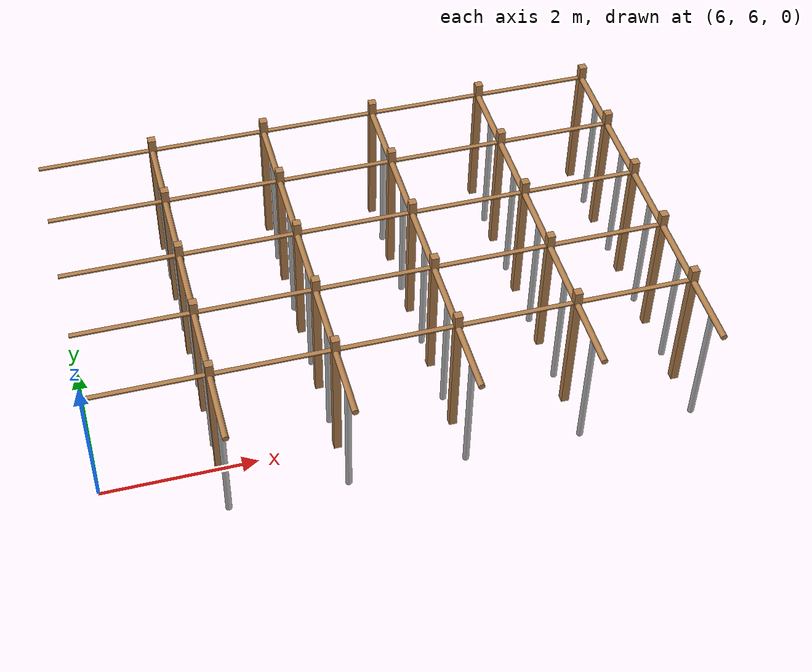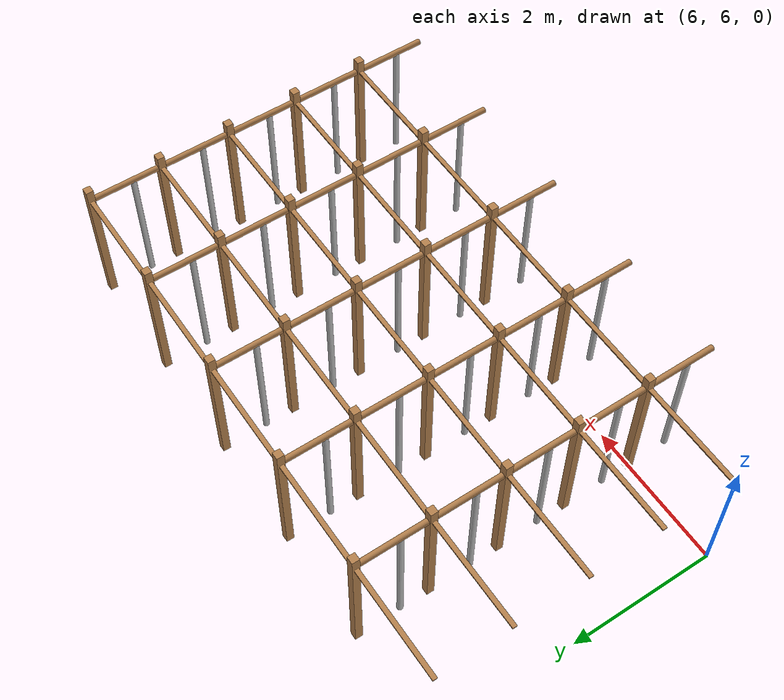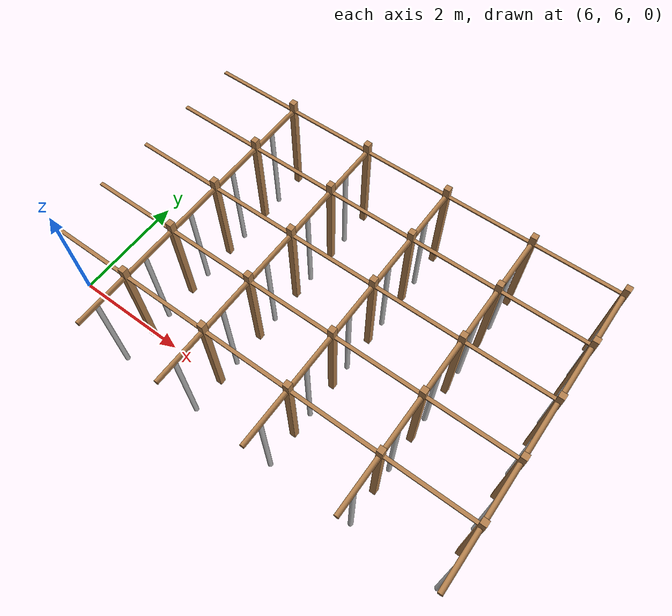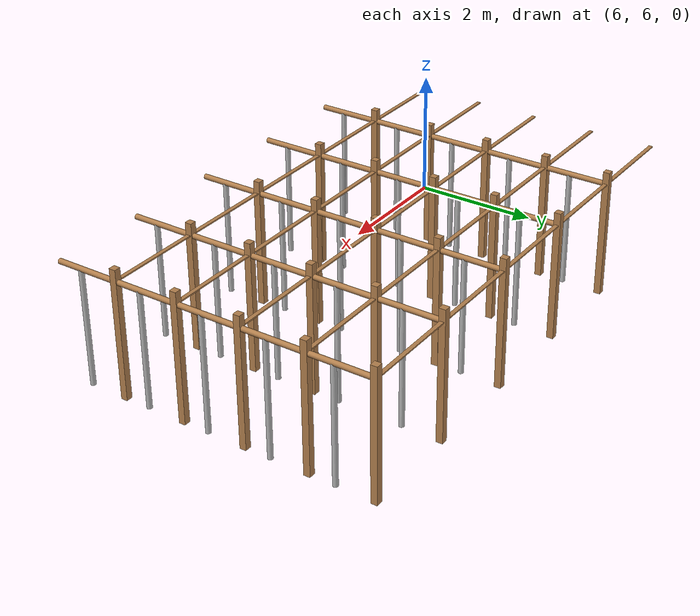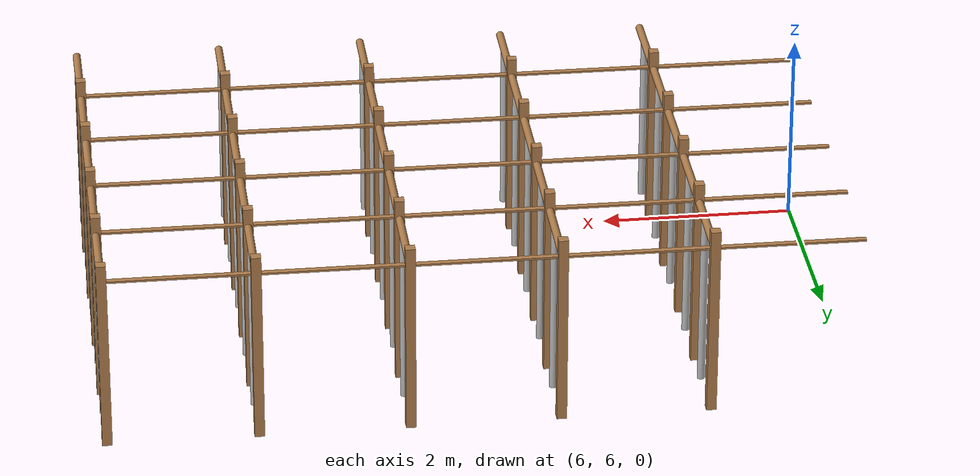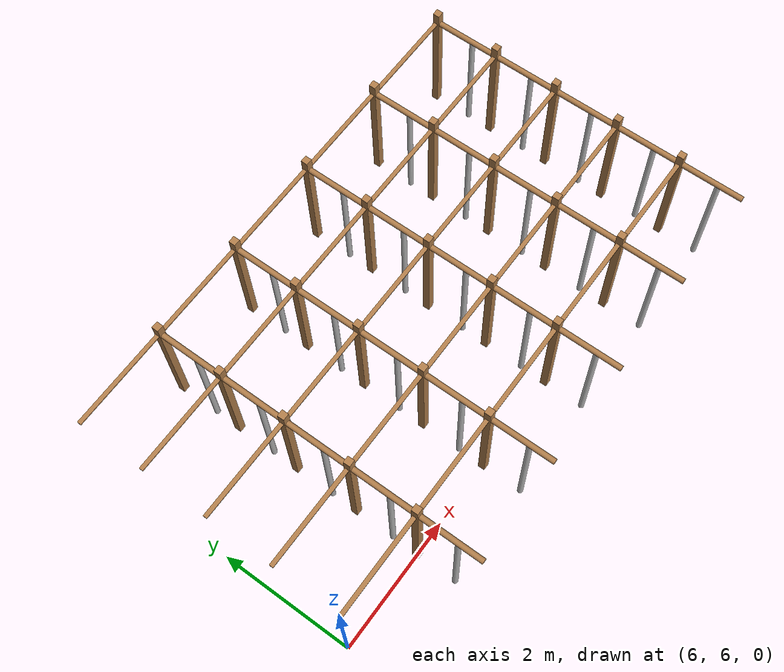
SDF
<sdf version="1.4">
 <model name="pergola">
  <include><name>post_61</name><pose>7.5 6.0 0 0 0 0</pose><uri>model://post</uri></include>
  <include><name>post_62</name><pose>7.5 7.0 0 0 0 0</pose><uri>model://post</uri></include>
  <include><name>post_63</name><pose>7.5 8.0 0 0 0 0</pose><uri>model://post</uri></include>
  <include><name>post_64</name><pose>7.5 9.0 0 0 0 0</pose><uri>model://post</uri></include>
  <include><name>post_65</name><pose>7.5 10.0 0 0 0 0</pose><uri>model://post</uri></include>
  <include><name>post_72</name><pose>9.0 6.0 0 0 0 0</pose><uri>model://post</uri></include>
  <include><name>post_73</name><pose>9.0 7.0 0 0 0 0</pose><uri>model://post</uri></include>
  <include><name>post_74</name><pose>9.0 8.0 0 0 0 0</pose><uri>model://post</uri></include>
  <include><name>post_75</name><pose>9.0 9.0 0 0 0 0</pose><uri>model://post</uri></include>
  <include><name>post_76</name><pose>9.0 10.0 0 0 0 0</pose><uri>model://post</uri></include>
  <include><name>post_83</name><pose>10.5 6.0 0 0 0 0</pose><uri>model://post</uri></include>
  <include><name>post_84</name><pose>10.5 7.0 0 0 0 0</pose><uri>model://post</uri></include>
  <include><name>post_85</name><pose>10.5 8.0 0 0 0 0</pose><uri>model://post</uri></include>
  <include><name>post_86</name><pose>10.5 9.0 0 0 0 0</pose><uri>model://post</uri></include>
  <include><name>post_87</name><pose>10.5 10.0 0 0 0 0</pose><uri>model://post</uri></include>
  <include><name>post_94</name><pose>12.0 6.0 0 0 0 0</pose><uri>model://post</uri></include>
  <include><name>post_95</name><pose>12.0 7.0 0 0 0 0</pose><uri>model://post</uri></include>
  <include><name>post_96</name><pose>12.0 8.0 0 0 0 0</pose><uri>model://post</uri></include>
  <include><name>post_97</name><pose>12.0 9.0 0 0 0 0</pose><uri>model://post</uri></include>
  <include><name>post_98</name><pose>12.0 10.0 0 0 0 0</pose><uri>model://post</uri></include>
  <include><name>post_105</name><pose>13.5 6.0 0 0 0 0</pose><uri>model://post</uri></include>
  <include><name>post_106</name><pose>13.5 7.0 0 0 0 0</pose><uri>model://post</uri></include>
  <include><name>post_107</name><pose>13.5 8.0 0 0 0 0</pose><uri>model://post</uri></include>
  <include><name>post_108</name><pose>13.5 9.0 0 0 0 0</pose><uri>model://post</uri></include>
  <include><name>post_109</name><pose>13.5 10.0 0 0 0 0</pose><uri>model://post</uri></include>
  <link name="beam_50">
   <pose>6.75 6.0 1.81 0 0 0</pose>
   <collision name="collision"><geometry><box><size>1.5 0.06 0.02</size></box></geometry></collision>
   <visual name="visual">
    <geometry><box><size>1.5 0.06 0.02</size></box></geometry>
    <material><script><name>Gazebo/Wood</name></script></material>
   </visual>
   <inertial>
    <mass>5</mass>
    <inertia>
     <ixx>0.0016666666666666668</ixx>
     <ixy>0.0</ixy>
     <ixz>0.0</ixz>
     <iyy>0.9390000000000001</iyy>
     <iyz>0.0</iyz>
     <izz>0.9376666666666665</izz>
    </inertia>
   </inertial>
  </link>
  <link name="beam_51">
   <pose>6.75 7.0 1.81 0 0 0</pose>
   <collision name="collision"><geometry><box><size>1.5 0.06 0.02</size></box></geometry></collision>
   <visual name="visual">
    <geometry><box><size>1.5 0.06 0.02</size></box></geometry>
    <material><script><name>Gazebo/Wood</name></script></material>
   </visual>
   <inertial>
    <mass>5</mass>
    <inertia>
     <ixx>0.0016666666666666668</ixx>
     <ixy>0.0</ixy>
     <ixz>0.0</ixz>
     <iyy>0.9390000000000001</iyy>
     <iyz>0.0</iyz>
     <izz>0.9376666666666665</izz>
    </inertia>
   </inertial>
  </link>
  <link name="beam_52">
   <pose>6.75 8.0 1.81 0 0 0</pose>
   <collision name="collision"><geometry><box><size>1.5 0.06 0.02</size></box></geometry></collision>
   <visual name="visual">
    <geometry><box><size>1.5 0.06 0.02</size></box></geometry>
    <material><script><name>Gazebo/Wood</name></script></material>
   </visual>
   <inertial>
    <mass>5</mass>
    <inertia>
     <ixx>0.0016666666666666668</ixx>
     <ixy>0.0</ixy>
     <ixz>0.0</ixz>
     <iyy>0.9390000000000001</iyy>
     <iyz>0.0</iyz>
     <izz>0.9376666666666665</izz>
    </inertia>
   </inertial>
  </link>
  <link name="beam_53">
   <pose>6.75 9.0 1.81 0 0 0</pose>
   <collision name="collision"><geometry><box><size>1.5 0.06 0.02</size></box></geometry></collision>
   <visual name="visual">
    <geometry><box><size>1.5 0.06 0.02</size></box></geometry>
    <material><script><name>Gazebo/Wood</name></script></material>
   </visual>
   <inertial>
    <mass>5</mass>
    <inertia>
     <ixx>0.0016666666666666668</ixx>
     <ixy>0.0</ixy>
     <ixz>0.0</ixz>
     <iyy>0.9390000000000001</iyy>
     <iyz>0.0</iyz>
     <izz>0.9376666666666665</izz>
    </inertia>
   </inertial>
  </link>
  <link name="beam_54">
   <pose>6.75 10.0 1.81 0 0 0</pose>
   <collision name="collision"><geometry><box><size>1.5 0.06 0.02</size></box></geometry></collision>
   <visual name="visual">
    <geometry><box><size>1.5 0.06 0.02</size></box></geometry>
    <material><script><name>Gazebo/Wood</name></script></material>
   </visual>
   <inertial>
    <mass>5</mass>
    <inertia>
     <ixx>0.0016666666666666668</ixx>
     <ixy>0.0</ixy>
     <ixz>0.0</ixz>
     <iyy>0.9390000000000001</iyy>
     <iyz>0.0</iyz>
     <izz>0.9376666666666665</izz>
    </inertia>
   </inertial>
  </link>
  <link name="beam_61">
   <pose>8.25 6.0 1.81 0 0 0</pose>
   <collision name="collision"><geometry><box><size>1.5 0.06 0.02</size></box></geometry></collision>
   <visual name="visual">
    <geometry><box><size>1.5 0.06 0.02</size></box></geometry>
    <material><script><name>Gazebo/Wood</name></script></material>
   </visual>
   <inertial>
    <mass>5</mass>
    <inertia>
     <ixx>0.0016666666666666668</ixx>
     <ixy>0.0</ixy>
     <ixz>0.0</ixz>
     <iyy>0.9390000000000001</iyy>
     <iyz>0.0</iyz>
     <izz>0.9376666666666665</izz>
    </inertia>
   </inertial>
  </link>
  <link name="beam_62">
   <pose>8.25 7.0 1.81 0 0 0</pose>
   <collision name="collision"><geometry><box><size>1.5 0.06 0.02</size></box></geometry></collision>
   <visual name="visual">
    <geometry><box><size>1.5 0.06 0.02</size></box></geometry>
    <material><script><name>Gazebo/Wood</name></script></material>
   </visual>
   <inertial>
    <mass>5</mass>
    <inertia>
     <ixx>0.0016666666666666668</ixx>
     <ixy>0.0</ixy>
     <ixz>0.0</ixz>
     <iyy>0.9390000000000001</iyy>
     <iyz>0.0</iyz>
     <izz>0.9376666666666665</izz>
    </inertia>
   </inertial>
  </link>
  <link name="beam_63">
   <pose>8.25 8.0 1.81 0 0 0</pose>
   <collision name="collision"><geometry><box><size>1.5 0.06 0.02</size></box></geometry></collision>
   <visual name="visual">
    <geometry><box><size>1.5 0.06 0.02</size></box></geometry>
    <material><script><name>Gazebo/Wood</name></script></material>
   </visual>
   <inertial>
    <mass>5</mass>
    <inertia>
     <ixx>0.0016666666666666668</ixx>
     <ixy>0.0</ixy>
     <ixz>0.0</ixz>
     <iyy>0.9390000000000001</iyy>
     <iyz>0.0</iyz>
     <izz>0.9376666666666665</izz>
    </inertia>
   </inertial>
  </link>
  <link name="beam_64">
   <pose>8.25 9.0 1.81 0 0 0</pose>
   <collision name="collision"><geometry><box><size>1.5 0.06 0.02</size></box></geometry></collision>
   <visual name="visual">
    <geometry><box><size>1.5 0.06 0.02</size></box></geometry>
    <material><script><name>Gazebo/Wood</name></script></material>
   </visual>
   <inertial>
    <mass>5</mass>
    <inertia>
     <ixx>0.0016666666666666668</ixx>
     <ixy>0.0</ixy>
     <ixz>0.0</ixz>
     <iyy>0.9390000000000001</iyy>
     <iyz>0.0</iyz>
     <izz>0.9376666666666665</izz>
    </inertia>
   </inertial>
  </link>
  <link name="beam_65">
   <pose>8.25 10.0 1.81 0 0 0</pose>
   <collision name="collision"><geometry><box><size>1.5 0.06 0.02</size></box></geometry></collision>
   <visual name="visual">
    <geometry><box><size>1.5 0.06 0.02</size></box></geometry>
    <material><script><name>Gazebo/Wood</name></script></material>
   </visual>
   <inertial>
    <mass>5</mass>
    <inertia>
     <ixx>0.0016666666666666668</ixx>
     <ixy>0.0</ixy>
     <ixz>0.0</ixz>
     <iyy>0.9390000000000001</iyy>
     <iyz>0.0</iyz>
     <izz>0.9376666666666665</izz>
    </inertia>
   </inertial>
  </link>
  <link name="beam_72">
   <pose>9.75 6.0 1.81 0 0 0</pose>
   <collision name="collision"><geometry><box><size>1.5 0.06 0.02</size></box></geometry></collision>
   <visual name="visual">
    <geometry><box><size>1.5 0.06 0.02</size></box></geometry>
    <material><script><name>Gazebo/Wood</name></script></material>
   </visual>
   <inertial>
    <mass>5</mass>
    <inertia>
     <ixx>0.0016666666666666668</ixx>
     <ixy>0.0</ixy>
     <ixz>0.0</ixz>
     <iyy>0.9390000000000001</iyy>
     <iyz>0.0</iyz>
     <izz>0.9376666666666665</izz>
    </inertia>
   </inertial>
  </link>
  <link name="beam_73">
   <pose>9.75 7.0 1.81 0 0 0</pose>
   <collision name="collision"><geometry><box><size>1.5 0.06 0.02</size></box></geometry></collision>
   <visual name="visual">
    <geometry><box><size>1.5 0.06 0.02</size></box></geometry>
    <material><script><name>Gazebo/Wood</name></script></material>
   </visual>
   <inertial>
    <mass>5</mass>
    <inertia>
     <ixx>0.0016666666666666668</ixx>
     <ixy>0.0</ixy>
     <ixz>0.0</ixz>
     <iyy>0.9390000000000001</iyy>
     <iyz>0.0</iyz>
     <izz>0.9376666666666665</izz>
    </inertia>
   </inertial>
  </link>
  <link name="beam_74">
   <pose>9.75 8.0 1.81 0 0 0</pose>
   <collision name="collision"><geometry><box><size>1.5 0.06 0.02</size></box></geometry></collision>
   <visual name="visual">
    <geometry><box><size>1.5 0.06 0.02</size></box></geometry>
    <material><script><name>Gazebo/Wood</name></script></material>
   </visual>
   <inertial>
    <mass>5</mass>
    <inertia>
     <ixx>0.0016666666666666668</ixx>
     <ixy>0.0</ixy>
     <ixz>0.0</ixz>
     <iyy>0.9390000000000001</iyy>
     <iyz>0.0</iyz>
     <izz>0.9376666666666665</izz>
    </inertia>
   </inertial>
  </link>
  <link name="beam_75">
   <pose>9.75 9.0 1.81 0 0 0</pose>
   <collision name="collision"><geometry><box><size>1.5 0.06 0.02</size></box></geometry></collision>
   <visual name="visual">
    <geometry><box><size>1.5 0.06 0.02</size></box></geometry>
    <material><script><name>Gazebo/Wood</name></script></material>
   </visual>
   <inertial>
    <mass>5</mass>
    <inertia>
     <ixx>0.0016666666666666668</ixx>
     <ixy>0.0</ixy>
     <ixz>0.0</ixz>
     <iyy>0.9390000000000001</iyy>
     <iyz>0.0</iyz>
     <izz>0.9376666666666665</izz>
    </inertia>
   </inertial>
  </link>
  <link name="beam_76">
   <pose>9.75 10.0 1.81 0 0 0</pose>
   <collision name="collision"><geometry><box><size>1.5 0.06 0.02</size></box></geometry></collision>
   <visual name="visual">
    <geometry><box><size>1.5 0.06 0.02</size></box></geometry>
    <material><script><name>Gazebo/Wood</name></script></material>
   </visual>
   <inertial>
    <mass>5</mass>
    <inertia>
     <ixx>0.0016666666666666668</ixx>
     <ixy>0.0</ixy>
     <ixz>0.0</ixz>
     <iyy>0.9390000000000001</iyy>
     <iyz>0.0</iyz>
     <izz>0.9376666666666665</izz>
    </inertia>
   </inertial>
  </link>
  <link name="beam_83">
   <pose>11.25 6.0 1.81 0 0 0</pose>
   <collision name="collision"><geometry><box><size>1.5 0.06 0.02</size></box></geometry></collision>
   <visual name="visual">
    <geometry><box><size>1.5 0.06 0.02</size></box></geometry>
    <material><script><name>Gazebo/Wood</name></script></material>
   </visual>
   <inertial>
    <mass>5</mass>
    <inertia>
     <ixx>0.0016666666666666668</ixx>
     <ixy>0.0</ixy>
     <ixz>0.0</ixz>
     <iyy>0.9390000000000001</iyy>
     <iyz>0.0</iyz>
     <izz>0.9376666666666665</izz>
    </inertia>
   </inertial>
  </link>
  <link name="beam_84">
   <pose>11.25 7.0 1.81 0 0 0</pose>
   <collision name="collision"><geometry><box><size>1.5 0.06 0.02</size></box></geometry></collision>
   <visual name="visual">
    <geometry><box><size>1.5 0.06 0.02</size></box></geometry>
    <material><script><name>Gazebo/Wood</name></script></material>
   </visual>
   <inertial>
    <mass>5</mass>
    <inertia>
     <ixx>0.0016666666666666668</ixx>
     <ixy>0.0</ixy>
     <ixz>0.0</ixz>
     <iyy>0.9390000000000001</iyy>
     <iyz>0.0</iyz>
     <izz>0.9376666666666665</izz>
    </inertia>
   </inertial>
  </link>
  <link name="beam_85">
   <pose>11.25 8.0 1.81 0 0 0</pose>
   <collision name="collision"><geometry><box><size>1.5 0.06 0.02</size></box></geometry></collision>
   <visual name="visual">
    <geometry><box><size>1.5 0.06 0.02</size></box></geometry>
    <material><script><name>Gazebo/Wood</name></script></material>
   </visual>
   <inertial>
    <mass>5</mass>
    <inertia>
     <ixx>0.0016666666666666668</ixx>
     <ixy>0.0</ixy>
     <ixz>0.0</ixz>
     <iyy>0.9390000000000001</iyy>
     <iyz>0.0</iyz>
     <izz>0.9376666666666665</izz>
    </inertia>
   </inertial>
  </link>
  <link name="beam_86">
   <pose>11.25 9.0 1.81 0 0 0</pose>
   <collision name="collision"><geometry><box><size>1.5 0.06 0.02</size></box></geometry></collision>
   <visual name="visual">
    <geometry><box><size>1.5 0.06 0.02</size></box></geometry>
    <material><script><name>Gazebo/Wood</name></script></material>
   </visual>
   <inertial>
    <mass>5</mass>
    <inertia>
     <ixx>0.0016666666666666668</ixx>
     <ixy>0.0</ixy>
     <ixz>0.0</ixz>
     <iyy>0.9390000000000001</iyy>
     <iyz>0.0</iyz>
     <izz>0.9376666666666665</izz>
    </inertia>
   </inertial>
  </link>
  <link name="beam_87">
   <pose>11.25 10.0 1.81 0 0 0</pose>
   <collision name="collision"><geometry><box><size>1.5 0.06 0.02</size></box></geometry></collision>
   <visual name="visual">
    <geometry><box><size>1.5 0.06 0.02</size></box></geometry>
    <material><script><name>Gazebo/Wood</name></script></material>
   </visual>
   <inertial>
    <mass>5</mass>
    <inertia>
     <ixx>0.0016666666666666668</ixx>
     <ixy>0.0</ixy>
     <ixz>0.0</ixz>
     <iyy>0.9390000000000001</iyy>
     <iyz>0.0</iyz>
     <izz>0.9376666666666665</izz>
    </inertia>
   </inertial>
  </link>
  <link name="beam_94">
   <pose>12.75 6.0 1.81 0 0 0</pose>
   <collision name="collision"><geometry><box><size>1.5 0.06 0.02</size></box></geometry></collision>
   <visual name="visual">
    <geometry><box><size>1.5 0.06 0.02</size></box></geometry>
    <material><script><name>Gazebo/Wood</name></script></material>
   </visual>
   <inertial>
    <mass>5</mass>
    <inertia>
     <ixx>0.0016666666666666668</ixx>
     <ixy>0.0</ixy>
     <ixz>0.0</ixz>
     <iyy>0.9390000000000001</iyy>
     <iyz>0.0</iyz>
     <izz>0.9376666666666665</izz>
    </inertia>
   </inertial>
  </link>
  <link name="beam_95">
   <pose>12.75 7.0 1.81 0 0 0</pose>
   <collision name="collision"><geometry><box><size>1.5 0.06 0.02</size></box></geometry></collision>
   <visual name="visual">
    <geometry><box><size>1.5 0.06 0.02</size></box></geometry>
    <material><script><name>Gazebo/Wood</name></script></material>
   </visual>
   <inertial>
    <mass>5</mass>
    <inertia>
     <ixx>0.0016666666666666668</ixx>
     <ixy>0.0</ixy>
     <ixz>0.0</ixz>
     <iyy>0.9390000000000001</iyy>
     <iyz>0.0</iyz>
     <izz>0.9376666666666665</izz>
    </inertia>
   </inertial>
  </link>
  <link name="beam_96">
   <pose>12.75 8.0 1.81 0 0 0</pose>
   <collision name="collision"><geometry><box><size>1.5 0.06 0.02</size></box></geometry></collision>
   <visual name="visual">
    <geometry><box><size>1.5 0.06 0.02</size></box></geometry>
    <material><script><name>Gazebo/Wood</name></script></material>
   </visual>
   <inertial>
    <mass>5</mass>
    <inertia>
     <ixx>0.0016666666666666668</ixx>
     <ixy>0.0</ixy>
     <ixz>0.0</ixz>
     <iyy>0.9390000000000001</iyy>
     <iyz>0.0</iyz>
     <izz>0.9376666666666665</izz>
    </inertia>
   </inertial>
  </link>
  <link name="beam_97">
   <pose>12.75 9.0 1.81 0 0 0</pose>
   <collision name="collision"><geometry><box><size>1.5 0.06 0.02</size></box></geometry></collision>
   <visual name="visual">
    <geometry><box><size>1.5 0.06 0.02</size></box></geometry>
    <material><script><name>Gazebo/Wood</name></script></material>
   </visual>
   <inertial>
    <mass>5</mass>
    <inertia>
     <ixx>0.0016666666666666668</ixx>
     <ixy>0.0</ixy>
     <ixz>0.0</ixz>
     <iyy>0.9390000000000001</iyy>
     <iyz>0.0</iyz>
     <izz>0.9376666666666665</izz>
    </inertia>
   </inertial>
  </link>
  <link name="beam_98">
   <pose>12.75 10.0 1.81 0 0 0</pose>
   <collision name="collision"><geometry><box><size>1.5 0.06 0.02</size></box></geometry></collision>
   <visual name="visual">
    <geometry><box><size>1.5 0.06 0.02</size></box></geometry>
    <material><script><name>Gazebo/Wood</name></script></material>
   </visual>
   <inertial>
    <mass>5</mass>
    <inertia>
     <ixx>0.0016666666666666668</ixx>
     <ixy>0.0</ixy>
     <ixz>0.0</ixz>
     <iyy>0.9390000000000001</iyy>
     <iyz>0.0</iyz>
     <izz>0.9376666666666665</izz>
    </inertia>
   </inertial>
  </link>
  <include><name>tree_55</name><pose>7.5 5.4 0 0 0 0</pose><uri>model://tree_trunk</uri></include>
  <include><name>tree_56</name><pose>7.5 6.4 0 0 0 0</pose><uri>model://tree_trunk</uri></include>
  <include><name>tree_57</name><pose>7.5 7.4 0 0 0 0</pose><uri>model://tree_trunk</uri></include>
  <include><name>tree_58</name><pose>7.5 8.4 0 0 0 0</pose><uri>model://tree_trunk</uri></include>
  <include><name>tree_59</name><pose>7.5 9.4 0 0 0 0</pose><uri>model://tree_trunk</uri></include>
  <include><name>tree_65</name><pose>9.0 5.4 0 0 0 0</pose><uri>model://tree_trunk</uri></include>
  <include><name>tree_66</name><pose>9.0 6.4 0 0 0 0</pose><uri>model://tree_trunk</uri></include>
  <include><name>tree_67</name><pose>9.0 7.4 0 0 0 0</pose><uri>model://tree_trunk</uri></include>
  <include><name>tree_68</name><pose>9.0 8.4 0 0 0 0</pose><uri>model://tree_trunk</uri></include>
  <include><name>tree_69</name><pose>9.0 9.4 0 0 0 0</pose><uri>model://tree_trunk</uri></include>
  <include><name>tree_75</name><pose>10.5 5.4 0 0 0 0</pose><uri>model://tree_trunk</uri></include>
  <include><name>tree_76</name><pose>10.5 6.4 0 0 0 0</pose><uri>model://tree_trunk</uri></include>
  <include><name>tree_77</name><pose>10.5 7.4 0 0 0 0</pose><uri>model://tree_trunk</uri></include>
  <include><name>tree_78</name><pose>10.5 8.4 0 0 0 0</pose><uri>model://tree_trunk</uri></include>
  <include><name>tree_79</name><pose>10.5 9.4 0 0 0 0</pose><uri>model://tree_trunk</uri></include>
  <include><name>tree_85</name><pose>12.0 5.4 0 0 0 0</pose><uri>model://tree_trunk</uri></include>
  <include><name>tree_86</name><pose>12.0 6.4 0 0 0 0</pose><uri>model://tree_trunk</uri></include>
  <include><name>tree_87</name><pose>12.0 7.4 0 0 0 0</pose><uri>model://tree_trunk</uri></include>
  <include><name>tree_88</name><pose>12.0 8.4 0 0 0 0</pose><uri>model://tree_trunk</uri></include>
  <include><name>tree_89</name><pose>12.0 9.4 0 0 0 0</pose><uri>model://tree_trunk</uri></include>
  <include><name>tree_95</name><pose>13.5 5.4 0 0 0 0</pose><uri>model://tree_trunk</uri></include>
  <include><name>tree_96</name><pose>13.5 6.4 0 0 0 0</pose><uri>model://tree_trunk</uri></include>
  <include><name>tree_97</name><pose>13.5 7.4 0 0 0 0</pose><uri>model://tree_trunk</uri></include>
  <include><name>tree_98</name><pose>13.5 8.4 0 0 0 0</pose><uri>model://tree_trunk</uri></include>
  <include><name>tree_99</name><pose>13.5 9.4 0 0 0 0</pose><uri>model://tree_trunk</uri></include>
  <link name="baseBranch_55">
   <pose>7.5 5.5 1.8 1.5707963267948966 0 0</pose>
   <collision name="collision">
    <geometry><cylinder><radius>0.04</radius><length>0.94</length></cylinder></geometry>
   </collision>
   <visual name="visual">
    <geometry><cylinder><radius>0.04</radius><length>0.94</length></cylinder></geometry>
    <material><script><name>Gazebo/WoodFloor</name></script></material>
   </visual>
   <inertial>
    <mass>10</mass>
    <inertia>
     <ixx>0.7403333333333334</ixx>
     <ixy>0.0</ixy>
     <ixz>0.0</ixz>
     <iyy>0.7403333333333334</iyy>
     <iyz>0.0</iyz>
     <izz>0.008</izz>
    </inertia>
   </inertial>
  </link>
  <link name="baseBranch_56">
   <pose>7.5 6.5 1.8 1.5707963267948966 0 0</pose>
   <collision name="collision">
    <geometry><cylinder><radius>0.04</radius><length>0.94</length></cylinder></geometry>
   </collision>
   <visual name="visual">
    <geometry><cylinder><radius>0.04</radius><length>0.94</length></cylinder></geometry>
    <material><script><name>Gazebo/WoodFloor</name></script></material>
   </visual>
   <inertial>
    <mass>10</mass>
    <inertia>
     <ixx>0.7403333333333334</ixx>
     <ixy>0.0</ixy>
     <ixz>0.0</ixz>
     <iyy>0.7403333333333334</iyy>
     <iyz>0.0</iyz>
     <izz>0.008</izz>
    </inertia>
   </inertial>
  </link>
  <link name="baseBranch_57">
   <pose>7.5 7.5 1.8 1.5707963267948966 0 0</pose>
   <collision name="collision">
    <geometry><cylinder><radius>0.04</radius><length>0.94</length></cylinder></geometry>
   </collision>
   <visual name="visual">
    <geometry><cylinder><radius>0.04</radius><length>0.94</length></cylinder></geometry>
    <material><script><name>Gazebo/WoodFloor</name></script></material>
   </visual>
   <inertial>
    <mass>10</mass>
    <inertia>
     <ixx>0.7403333333333334</ixx>
     <ixy>0.0</ixy>
     <ixz>0.0</ixz>
     <iyy>0.7403333333333334</iyy>
     <iyz>0.0</iyz>
     <izz>0.008</izz>
    </inertia>
   </inertial>
  </link>
  <link name="baseBranch_58">
   <pose>7.5 8.5 1.8 1.5707963267948966 0 0</pose>
   <collision name="collision">
    <geometry><cylinder><radius>0.04</radius><length>0.94</length></cylinder></geometry>
   </collision>
   <visual name="visual">
    <geometry><cylinder><radius>0.04</radius><length>0.94</length></cylinder></geometry>
    <material><script><name>Gazebo/WoodFloor</name></script></material>
   </visual>
   <inertial>
    <mass>10</mass>
    <inertia>
     <ixx>0.7403333333333334</ixx>
     <ixy>0.0</ixy>
     <ixz>0.0</ixz>
     <iyy>0.7403333333333334</iyy>
     <iyz>0.0</iyz>
     <izz>0.008</izz>
    </inertia>
   </inertial>
  </link>
  <link name="baseBranch_59">
   <pose>7.5 9.5 1.8 1.5707963267948966 0 0</pose>
   <collision name="collision">
    <geometry><cylinder><radius>0.04</radius><length>0.94</length></cylinder></geometry>
   </collision>
   <visual name="visual">
    <geometry><cylinder><radius>0.04</radius><length>0.94</length></cylinder></geometry>
    <material><script><name>Gazebo/WoodFloor</name></script></material>
   </visual>
   <inertial>
    <mass>10</mass>
    <inertia>
     <ixx>0.7403333333333334</ixx>
     <ixy>0.0</ixy>
     <ixz>0.0</ixz>
     <iyy>0.7403333333333334</iyy>
     <iyz>0.0</iyz>
     <izz>0.008</izz>
    </inertia>
   </inertial>
  </link>
  <link name="baseBranch_65">
   <pose>9.0 5.5 1.8 1.5707963267948966 0 0</pose>
   <collision name="collision">
    <geometry><cylinder><radius>0.04</radius><length>0.94</length></cylinder></geometry>
   </collision>
   <visual name="visual">
    <geometry><cylinder><radius>0.04</radius><length>0.94</length></cylinder></geometry>
    <material><script><name>Gazebo/WoodFloor</name></script></material>
   </visual>
   <inertial>
    <mass>10</mass>
    <inertia>
     <ixx>0.7403333333333334</ixx>
     <ixy>0.0</ixy>
     <ixz>0.0</ixz>
     <iyy>0.7403333333333334</iyy>
     <iyz>0.0</iyz>
     <izz>0.008</izz>
    </inertia>
   </inertial>
  </link>
  <link name="baseBranch_66">
   <pose>9.0 6.5 1.8 1.5707963267948966 0 0</pose>
   <collision name="collision">
    <geometry><cylinder><radius>0.04</radius><length>0.94</length></cylinder></geometry>
   </collision>
   <visual name="visual">
    <geometry><cylinder><radius>0.04</radius><length>0.94</length></cylinder></geometry>
    <material><script><name>Gazebo/WoodFloor</name></script></material>
   </visual>
   <inertial>
    <mass>10</mass>
    <inertia>
     <ixx>0.7403333333333334</ixx>
     <ixy>0.0</ixy>
     <ixz>0.0</ixz>
     <iyy>0.7403333333333334</iyy>
     <iyz>0.0</iyz>
     <izz>0.008</izz>
    </inertia>
   </inertial>
  </link>
  <link name="baseBranch_67">
   <pose>9.0 7.5 1.8 1.5707963267948966 0 0</pose>
   <collision name="collision">
    <geometry><cylinder><radius>0.04</radius><length>0.94</length></cylinder></geometry>
   </collision>
   <visual name="visual">
    <geometry><cylinder><radius>0.04</radius><length>0.94</length></cylinder></geometry>
    <material><script><name>Gazebo/WoodFloor</name></script></material>
   </visual>
   <inertial>
    <mass>10</mass>
    <inertia>
     <ixx>0.7403333333333334</ixx>
     <ixy>0.0</ixy>
     <ixz>0.0</ixz>
     <iyy>0.7403333333333334</iyy>
     <iyz>0.0</iyz>
     <izz>0.008</izz>
    </inertia>
   </inertial>
  </link>
  <link name="baseBranch_68">
   <pose>9.0 8.5 1.8 1.5707963267948966 0 0</pose>
   <collision name="collision">
    <geometry><cylinder><radius>0.04</radius><length>0.94</length></cylinder></geometry>
   </collision>
   <visual name="visual">
    <geometry><cylinder><radius>0.04</radius><length>0.94</length></cylinder></geometry>
    <material><script><name>Gazebo/WoodFloor</name></script></material>
   </visual>
   <inertial>
    <mass>10</mass>
    <inertia>
     <ixx>0.7403333333333334</ixx>
     <ixy>0.0</ixy>
     <ixz>0.0</ixz>
     <iyy>0.7403333333333334</iyy>
     <iyz>0.0</iyz>
     <izz>0.008</izz>
    </inertia>
   </inertial>
  </link>
  <link name="baseBranch_69">
   <pose>9.0 9.5 1.8 1.5707963267948966 0 0</pose>
   <collision name="collision">
    <geometry><cylinder><radius>0.04</radius><length>0.94</length></cylinder></geometry>
   </collision>
   <visual name="visual">
    <geometry><cylinder><radius>0.04</radius><length>0.94</length></cylinder></geometry>
    <material><script><name>Gazebo/WoodFloor</name></script></material>
   </visual>
   <inertial>
    <mass>10</mass>
    <inertia>
     <ixx>0.7403333333333334</ixx>
     <ixy>0.0</ixy>
     <ixz>0.0</ixz>
     <iyy>0.7403333333333334</iyy>
     <iyz>0.0</iyz>
     <izz>0.008</izz>
    </inertia>
   </inertial>
  </link>
  <link name="baseBranch_75">
   <pose>10.5 5.5 1.8 1.5707963267948966 0 0</pose>
   <collision name="collision">
    <geometry><cylinder><radius>0.04</radius><length>0.94</length></cylinder></geometry>
   </collision>
   <visual name="visual">
    <geometry><cylinder><radius>0.04</radius><length>0.94</length></cylinder></geometry>
    <material><script><name>Gazebo/WoodFloor</name></script></material>
   </visual>
   <inertial>
    <mass>10</mass>
    <inertia>
     <ixx>0.7403333333333334</ixx>
     <ixy>0.0</ixy>
     <ixz>0.0</ixz>
     <iyy>0.7403333333333334</iyy>
     <iyz>0.0</iyz>
     <izz>0.008</izz>
    </inertia>
   </inertial>
  </link>
  <link name="baseBranch_76">
   <pose>10.5 6.5 1.8 1.5707963267948966 0 0</pose>
   <collision name="collision">
    <geometry><cylinder><radius>0.04</radius><length>0.94</length></cylinder></geometry>
   </collision>
   <visual name="visual">
    <geometry><cylinder><radius>0.04</radius><length>0.94</length></cylinder></geometry>
    <material><script><name>Gazebo/WoodFloor</name></script></material>
   </visual>
   <inertial>
    <mass>10</mass>
    <inertia>
     <ixx>0.7403333333333334</ixx>
     <ixy>0.0</ixy>
     <ixz>0.0</ixz>
     <iyy>0.7403333333333334</iyy>
     <iyz>0.0</iyz>
     <izz>0.008</izz>
    </inertia>
   </inertial>
  </link>
  <link name="baseBranch_77">
   <pose>10.5 7.5 1.8 1.5707963267948966 0 0</pose>
   <collision name="collision">
    <geometry><cylinder><radius>0.04</radius><length>0.94</length></cylinder></geometry>
   </collision>
   <visual name="visual">
    <geometry><cylinder><radius>0.04</radius><length>0.94</length></cylinder></geometry>
    <material><script><name>Gazebo/WoodFloor</name></script></material>
   </visual>
   <inertial>
    <mass>10</mass>
    <inertia>
     <ixx>0.7403333333333334</ixx>
     <ixy>0.0</ixy>
     <ixz>0.0</ixz>
     <iyy>0.7403333333333334</iyy>
     <iyz>0.0</iyz>
     <izz>0.008</izz>
    </inertia>
   </inertial>
  </link>
  <link name="baseBranch_78">
   <pose>10.5 8.5 1.8 1.5707963267948966 0 0</pose>
   <collision name="collision">
    <geometry><cylinder><radius>0.04</radius><length>0.94</length></cylinder></geometry>
   </collision>
   <visual name="visual">
    <geometry><cylinder><radius>0.04</radius><length>0.94</length></cylinder></geometry>
    <material><script><name>Gazebo/WoodFloor</name></script></material>
   </visual>
   <inertial>
    <mass>10</mass>
    <inertia>
     <ixx>0.7403333333333334</ixx>
     <ixy>0.0</ixy>
     <ixz>0.0</ixz>
     <iyy>0.7403333333333334</iyy>
     <iyz>0.0</iyz>
     <izz>0.008</izz>
    </inertia>
   </inertial>
  </link>
  <link name="baseBranch_79">
   <pose>10.5 9.5 1.8 1.5707963267948966 0 0</pose>
   <collision name="collision">
    <geometry><cylinder><radius>0.04</radius><length>0.94</length></cylinder></geometry>
   </collision>
   <visual name="visual">
    <geometry><cylinder><radius>0.04</radius><length>0.94</length></cylinder></geometry>
    <material><script><name>Gazebo/WoodFloor</name></script></material>
   </visual>
   <inertial>
    <mass>10</mass>
    <inertia>
     <ixx>0.7403333333333334</ixx>
     <ixy>0.0</ixy>
     <ixz>0.0</ixz>
     <iyy>0.7403333333333334</iyy>
     <iyz>0.0</iyz>
     <izz>0.008</izz>
    </inertia>
   </inertial>
  </link>
  <link name="baseBranch_85">
   <pose>12.0 5.5 1.8 1.5707963267948966 0 0</pose>
   <collision name="collision">
    <geometry><cylinder><radius>0.04</radius><length>0.94</length></cylinder></geometry>
   </collision>
   <visual name="visual">
    <geometry><cylinder><radius>0.04</radius><length>0.94</length></cylinder></geometry>
    <material><script><name>Gazebo/WoodFloor</name></script></material>
   </visual>
   <inertial>
    <mass>10</mass>
    <inertia>
     <ixx>0.7403333333333334</ixx>
     <ixy>0.0</ixy>
     <ixz>0.0</ixz>
     <iyy>0.7403333333333334</iyy>
     <iyz>0.0</iyz>
     <izz>0.008</izz>
    </inertia>
   </inertial>
  </link>
  <link name="baseBranch_86">
   <pose>12.0 6.5 1.8 1.5707963267948966 0 0</pose>
   <collision name="collision">
    <geometry><cylinder><radius>0.04</radius><length>0.94</length></cylinder></geometry>
   </collision>
   <visual name="visual">
    <geometry><cylinder><radius>0.04</radius><length>0.94</length></cylinder></geometry>
    <material><script><name>Gazebo/WoodFloor</name></script></material>
   </visual>
   <inertial>
    <mass>10</mass>
    <inertia>
     <ixx>0.7403333333333334</ixx>
     <ixy>0.0</ixy>
     <ixz>0.0</ixz>
     <iyy>0.7403333333333334</iyy>
     <iyz>0.0</iyz>
     <izz>0.008</izz>
    </inertia>
   </inertial>
  </link>
  <link name="baseBranch_87">
   <pose>12.0 7.5 1.8 1.5707963267948966 0 0</pose>
   <collision name="collision">
    <geometry><cylinder><radius>0.04</radius><length>0.94</length></cylinder></geometry>
   </collision>
   <visual name="visual">
    <geometry><cylinder><radius>0.04</radius><length>0.94</length></cylinder></geometry>
    <material><script><name>Gazebo/WoodFloor</name></script></material>
   </visual>
   <inertial>
    <mass>10</mass>
    <inertia>
     <ixx>0.7403333333333334</ixx>
     <ixy>0.0</ixy>
     <ixz>0.0</ixz>
     <iyy>0.7403333333333334</iyy>
     <iyz>0.0</iyz>
     <izz>0.008</izz>
    </inertia>
   </inertial>
  </link>
  <link name="baseBranch_88">
   <pose>12.0 8.5 1.8 1.5707963267948966 0 0</pose>
   <collision name="collision">
    <geometry><cylinder><radius>0.04</radius><length>0.94</length></cylinder></geometry>
   </collision>
   <visual name="visual">
    <geometry><cylinder><radius>0.04</radius><length>0.94</length></cylinder></geometry>
    <material><script><name>Gazebo/WoodFloor</name></script></material>
   </visual>
   <inertial>
    <mass>10</mass>
    <inertia>
     <ixx>0.7403333333333334</ixx>
     <ixy>0.0</ixy>
     <ixz>0.0</ixz>
     <iyy>0.7403333333333334</iyy>
     <iyz>0.0</iyz>
     <izz>0.008</izz>
    </inertia>
   </inertial>
  </link>
  <link name="baseBranch_89">
   <pose>12.0 9.5 1.8 1.5707963267948966 0 0</pose>
   <collision name="collision">
    <geometry><cylinder><radius>0.04</radius><length>0.94</length></cylinder></geometry>
   </collision>
   <visual name="visual">
    <geometry><cylinder><radius>0.04</radius><length>0.94</length></cylinder></geometry>
    <material><script><name>Gazebo/WoodFloor</name></script></material>
   </visual>
   <inertial>
    <mass>10</mass>
    <inertia>
     <ixx>0.7403333333333334</ixx>
     <ixy>0.0</ixy>
     <ixz>0.0</ixz>
     <iyy>0.7403333333333334</iyy>
     <iyz>0.0</iyz>
     <izz>0.008</izz>
    </inertia>
   </inertial>
  </link>
  <link name="baseBranch_95">
   <pose>13.5 5.5 1.8 1.5707963267948966 0 0</pose>
   <collision name="collision">
    <geometry><cylinder><radius>0.04</radius><length>0.94</length></cylinder></geometry>
   </collision>
   <visual name="visual">
    <geometry><cylinder><radius>0.04</radius><length>0.94</length></cylinder></geometry>
    <material><script><name>Gazebo/WoodFloor</name></script></material>
   </visual>
   <inertial>
    <mass>10</mass>
    <inertia>
     <ixx>0.7403333333333334</ixx>
     <ixy>0.0</ixy>
     <ixz>0.0</ixz>
     <iyy>0.7403333333333334</iyy>
     <iyz>0.0</iyz>
     <izz>0.008</izz>
    </inertia>
   </inertial>
  </link>
  <link name="baseBranch_96">
   <pose>13.5 6.5 1.8 1.5707963267948966 0 0</pose>
   <collision name="collision">
    <geometry><cylinder><radius>0.04</radius><length>0.94</length></cylinder></geometry>
   </collision>
   <visual name="visual">
    <geometry><cylinder><radius>0.04</radius><length>0.94</length></cylinder></geometry>
    <material><script><name>Gazebo/WoodFloor</name></script></material>
   </visual>
   <inertial>
    <mass>10</mass>
    <inertia>
     <ixx>0.7403333333333334</ixx>
     <ixy>0.0</ixy>
     <ixz>0.0</ixz>
     <iyy>0.7403333333333334</iyy>
     <iyz>0.0</iyz>
     <izz>0.008</izz>
    </inertia>
   </inertial>
  </link>
  <link name="baseBranch_97">
   <pose>13.5 7.5 1.8 1.5707963267948966 0 0</pose>
   <collision name="collision">
    <geometry><cylinder><radius>0.04</radius><length>0.94</length></cylinder></geometry>
   </collision>
   <visual name="visual">
    <geometry><cylinder><radius>0.04</radius><length>0.94</length></cylinder></geometry>
    <material><script><name>Gazebo/WoodFloor</name></script></material>
   </visual>
   <inertial>
    <mass>10</mass>
    <inertia>
     <ixx>0.7403333333333334</ixx>
     <ixy>0.0</ixy>
     <ixz>0.0</ixz>
     <iyy>0.7403333333333334</iyy>
     <iyz>0.0</iyz>
     <izz>0.008</izz>
    </inertia>
   </inertial>
  </link>
  <link name="baseBranch_98">
   <pose>13.5 8.5 1.8 1.5707963267948966 0 0</pose>
   <collision name="collision">
    <geometry><cylinder><radius>0.04</radius><length>0.94</length></cylinder></geometry>
   </collision>
   <visual name="visual">
    <geometry><cylinder><radius>0.04</radius><length>0.94</length></cylinder></geometry>
    <material><script><name>Gazebo/WoodFloor</name></script></material>
   </visual>
   <inertial>
    <mass>10</mass>
    <inertia>
     <ixx>0.7403333333333334</ixx>
     <ixy>0.0</ixy>
     <ixz>0.0</ixz>
     <iyy>0.7403333333333334</iyy>
     <iyz>0.0</iyz>
     <izz>0.008</izz>
    </inertia>
   </inertial>
  </link>
  <link name="baseBranch_99">
   <pose>13.5 9.5 1.8 1.5707963267948966 0 0</pose>
   <collision name="collision">
    <geometry><cylinder><radius>0.04</radius><length>0.94</length></cylinder></geometry>
   </collision>
   <visual name="visual">
    <geometry><cylinder><radius>0.04</radius><length>0.94</length></cylinder></geometry>
    <material><script><name>Gazebo/WoodFloor</name></script></material>
   </visual>
   <inertial>
    <mass>10</mass>
    <inertia>
     <ixx>0.7403333333333334</ixx>
     <ixy>0.0</ixy>
     <ixz>0.0</ixz>
     <iyy>0.7403333333333334</iyy>
     <iyz>0.0</iyz>
     <izz>0.008</izz>
    </inertia>
   </inertial>
  </link>
 </model>
</sdf>
